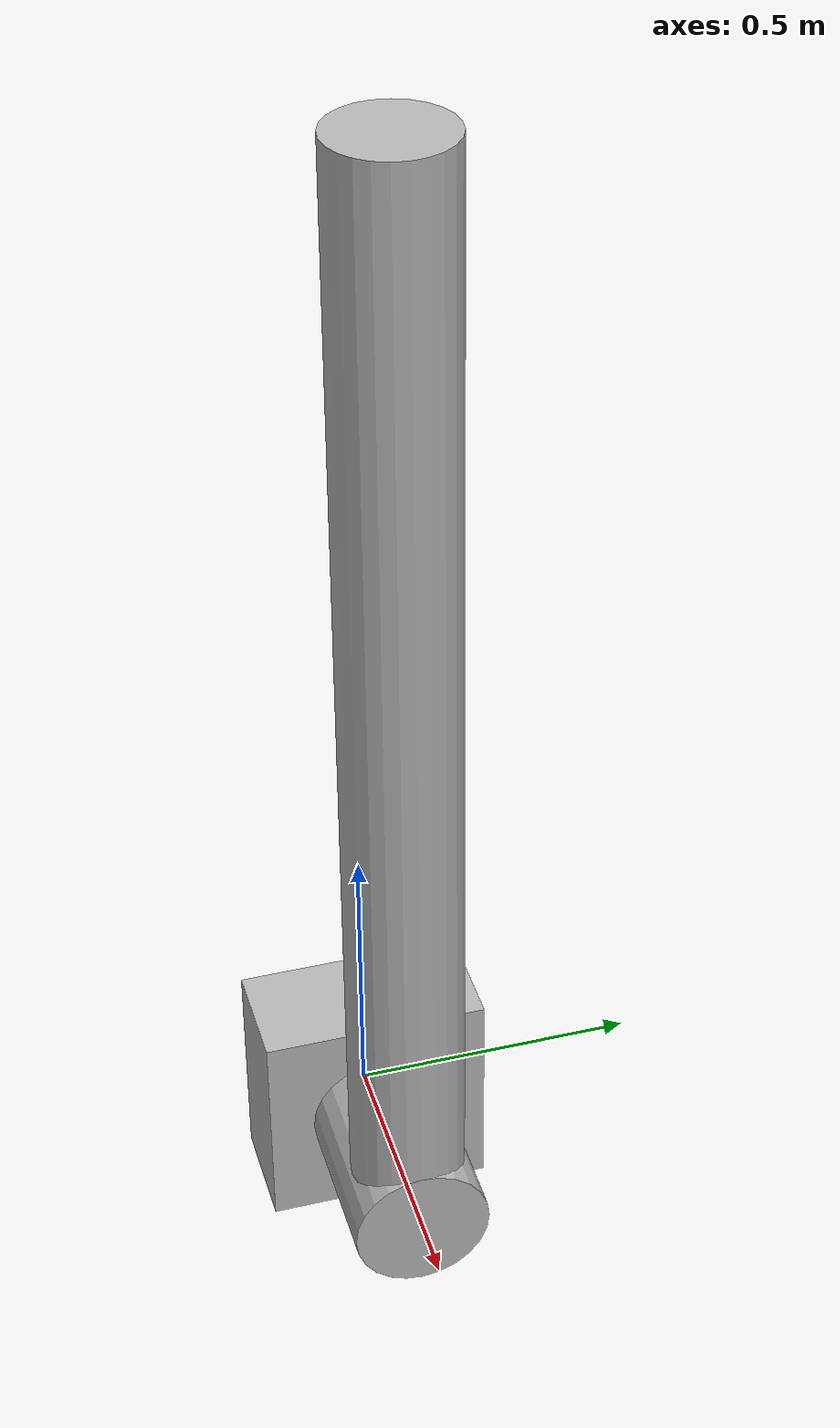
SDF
<sdf version="1.12">
	<model name="pendulum">
		<!-- Base -->
		<link name="slider">
			<pose>0.0 0 0 0 0 0</pose>
			<inertial>
				<mass>1.0</mass>
				<pose>0 0 0 0 0 0</pose>
			</inertial>
			<visual name="vis_slider">
				<geometry>
					<box>
						<size>0.2 0.4 0.4</size>
					</box>
				</geometry>
			</visual>
		</link>
		<!-- Link 1 -->
		<link name="link1">
			<pose degrees="true">0.3 0 0 0.0 0 0</pose>
			<inertial>
				<mass>1.0</mass>
				<pose>0 0 1.0 0 0 0</pose>
				<!-- Match the I=1 kg*m^2 inertia used by the LQR model. -->
				<inertia>
					<ixx>1.0</ixx>
					<iyy>1.0</iyy>
					<izz>1.0</izz>
					<ixy>0.0</ixy>
					<ixz>0.0</ixz>
					<iyz>0.0</iyz>
				</inertia>
			</inertial>
			<visual name="vis_link">
				<pose>0 0 1.0 0 0 0</pose>
				<geometry>
					<cylinder>
						<radius>0.1</radius>
						<length>2.0</length>
					</cylinder>
				</geometry>
			</visual>
			<visual name="vis_upper_joint">
				<pose>-0.1 0 0 0 1.5708 0</pose>
				<geometry>
					<cylinder>
						<radius>0.12</radius>
						<length>0.4</length>
					</cylinder>
				</geometry>
			</visual>
		</link>
		<!-- Joint 0: world to slider -->
		<joint name="world_to_slider" type="prismatic">
			<parent>world</parent>
			<child>slider</child>
			<pose>0 0 0 0 0 0</pose>
			<axis>
				<!-- Move along the Z-axis -->
				<xyz>0 1 0</xyz>
				<limit>
					<lower>-100.0</lower>
					<upper>100.0</upper>
				</limit>
				<dynamics>
					<damping>0.1</damping>
				</dynamics>
			</axis>
		</joint>
		<!-- Joint 1: slider to link 1 -->
		<joint name="slider_to_l1" type="revolute">
			<pose degrees="true">0 0 0 0 0 0</pose>
			<parent>slider</parent>
			<child>link1</child>
			<axis>
				<xyz>1 0 0</xyz>
				<dynamics>
					<damping>0.0</damping>
				</dynamics>
			</axis>
		</joint>
		<!-- Plugins for working with ROS -->
		<plugin
            filename="gz-sim-joint-state-publisher-system"
            name="gz::sim::systems::JointStatePublisher"
        ></plugin>
		<plugin
            filename="gz-sim-apply-joint-force-system"
            name="gz::sim::systems::ApplyJointForce"
        >
			<!-- Let ROS apply force to the slider/cart -->
			<joint_name>world_to_slider</joint_name>
		</plugin>
		<plugin
            filename="gz-sim-apply-joint-force-system"
            name="gz::sim::systems::ApplyJointForce"
        >
			<!-- Let the benchmarker apply an external torque to the pendulum. -->
			<joint_name>slider_to_l1</joint_name>
		</plugin>
	</model>
</sdf>
